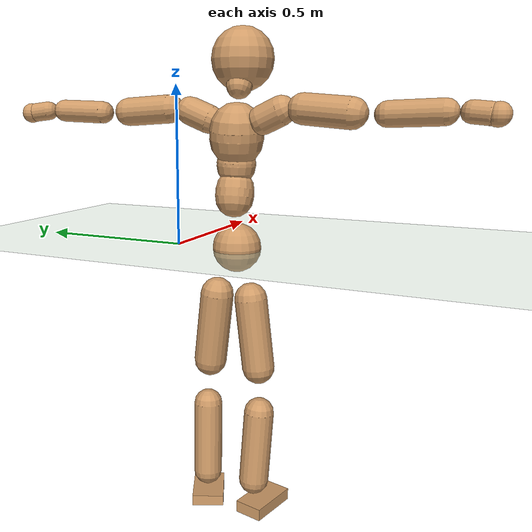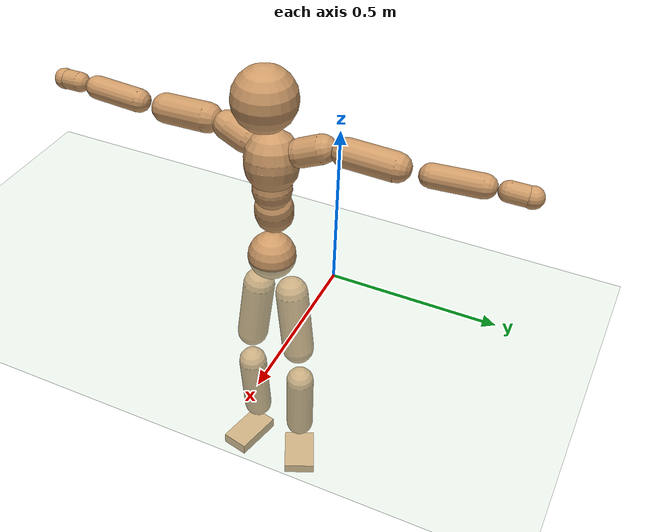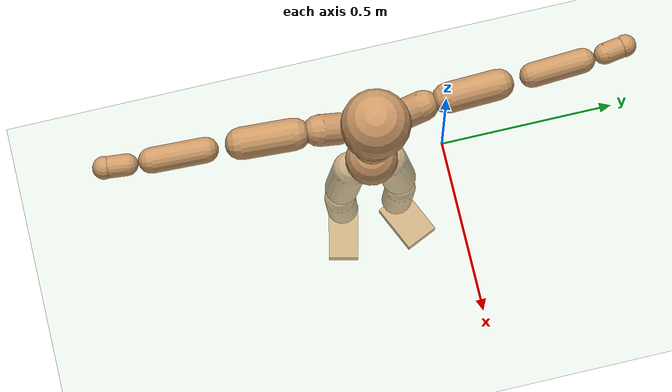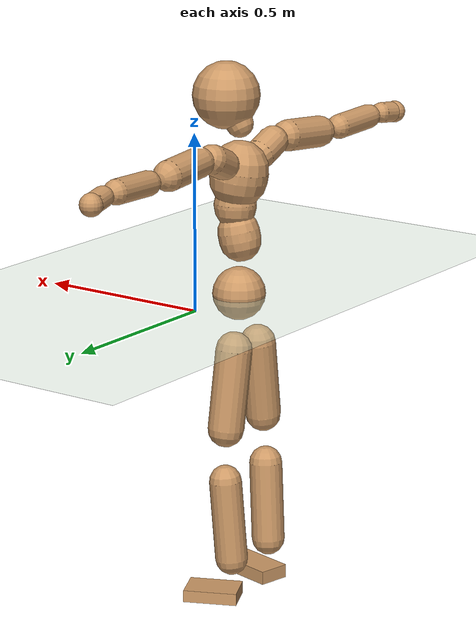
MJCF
<mujoco model="humanoid">
  <compiler coordinate="local" angle="radian"/>
  <default>
    <joint damping="0.0" armature="0.01" stiffness="0.0" limited="true"/>
    <geom conaffinity="1" condim="3" contype="7" margin="0.001" rgba="0.8 0.6 .4 1"/>
  </default>
  <asset>
    <texture type="skybox" builtin="gradient" rgb1=".4 .5 .6" rgb2="0 0 0" width="100" height="100"/>
    <texture builtin="flat" height="1278" mark="cross" markrgb="1 1 1" name="texgeom" random="0.01" rgb1="0.8 0.6 0.4" rgb2="0.8 0.6 0.4" type="cube" width="127"/>
    <texture builtin="checker" height="100" name="texplane" rgb1="0 0 0" rgb2="0.8 0.8 0.8" type="2d" width="100"/>
    <material name="MatPlane" reflectance="0.5" shininess="1" specular="1" texrepeat="60 60" texture="texplane"/>
    <material name="geom" texture="texgeom" texuniform="true"/>
  </asset>
  <worldbody>
    <light cutoff="100" diffuse="1 1 1" dir="-0 0 -1.3" directional="true" exponent="1" pos="0 0 1.3" specular=".1 .1 .1"/>
    <geom conaffinity="1" condim="3" name="floor" pos="0 0 0" rgba="0.8 0.9 0.8 1" size="100 100 .2" type="plane" material="MatPlane"/>
    <body name="Pelvis" pos="-0.001 -0.2077 0.0058">
      <freejoint name="Pelvis"/>
      <geom type="sphere" contype="1" conaffinity="1" density="500" size="0.0759" pos="0.0000 0.0000 0.0000" name="Pelvis"/>
      <body name="L_Hip" pos="-0.0258 0.048 -0.0732">
        <joint name="L_Hip_x" type="hinge" pos="0 0 0" axis="1 0 0" stiffness="800" damping="80" armature="0.02" range="-180.0000 180.0000"/>
        <joint name="L_Hip_y" type="hinge" pos="0 0 0" axis="0 1 0" stiffness="800" damping="80" armature="0.02" range="-180.0000 180.0000"/>
        <joint name="L_Hip_z" type="hinge" pos="0 0 0" axis="0 0 1" stiffness="800" damping="80" armature="0.02" range="-180.0000 180.0000"/>
        <geom type="capsule" contype="1" conaffinity="1" density="500" fromto="0.0022 0.0096 -0.0761 0.0089 0.0385 -0.3045" size="0.0522" name="L_Hip"/>
        <body name="L_Knee" pos="0.0111 0.0481 -0.3806">
          <joint name="L_Knee_x" type="hinge" pos="0 0 0" axis="1 0 0" stiffness="800" damping="80" armature="0.02" range="-180.0000 180.0000"/>
          <joint name="L_Knee_y" type="hinge" pos="0 0 0" axis="0 1 0" stiffness="800" damping="80" armature="0.02" range="-180.0000 180.0000"/>
          <joint name="L_Knee_z" type="hinge" pos="0 0 0" axis="0 0 1" stiffness="800" damping="80" armature="0.02" range="-180.0000 180.0000"/>
          <geom type="capsule" contype="1" conaffinity="1" density="500" fromto="-0.0058 -0.0020 -0.0780 -0.0234 -0.0079 -0.3121" size="0.0466" name="L_Knee"/>
          <body name="L_Ankle" pos="-0.0292 -0.0099 -0.3902">
            <joint name="L_Ankle_x" type="hinge" pos="0 0 0" axis="1 0 0" stiffness="800" damping="80" armature="0.02" range="-180.0000 180.0000"/>
            <joint name="L_Ankle_y" type="hinge" pos="0 0 0" axis="0 1 0" stiffness="800" damping="80" armature="0.02" range="-180.0000 180.0000"/>
            <joint name="L_Ankle_z" type="hinge" pos="0 0 0" axis="0 0 1" stiffness="800" damping="80" armature="0.02" range="-180.0000 180.0000"/>
            <geom type="box" contype="1" conaffinity="1" density="500" pos="0.0547 0.0250 -0.0283" size="0.0771 0.0521 0.0175" quat="0.9771 0.0000 0.0000 0.2127" name="L_Ankle"/>
            <body name="L_Toe" pos="0.1095 0.05 -0.0566">
              <joint name="L_Toe_x" type="hinge" pos="0 0 0" axis="1 0 0" stiffness="500" damping="50" armature="0.02" range="-180.0000 180.0000"/>
              <joint name="L_Toe_y" type="hinge" pos="0 0 0" axis="0 1 0" stiffness="500" damping="50" armature="0.02" range="-180.0000 180.0000"/>
              <joint name="L_Toe_z" type="hinge" pos="0 0 0" axis="0 0 1" stiffness="500" damping="50" armature="0.02" range="-180.0000 180.0000"/>
              <geom type="box" contype="1" conaffinity="1" density="500" pos="0.0000 0.0000 0.0307" size="0.001 0.0025 0.001" quat="0.9763 0.0000 0.0000 0.2166" name="L_Toe"/>
            </body>
          </body>
        </body>
      </body>
      <body name="R_Hip" pos="-0.0239 -0.0496 -0.0803">
        <joint name="R_Hip_x" type="hinge" pos="0 0 0" axis="1 0 0" stiffness="800" damping="80" armature="0.02" range="-180.0000 180.0000"/>
        <joint name="R_Hip_y" type="hinge" pos="0 0 0" axis="0 1 0" stiffness="800" damping="80" armature="0.02" range="-180.0000 180.0000"/>
        <joint name="R_Hip_z" type="hinge" pos="0 0 0" axis="0 0 1" stiffness="800" damping="80" armature="0.02" range="-180.0000 180.0000"/>
        <geom type="capsule" contype="1" conaffinity="1" density="500" fromto="-0.0002 -0.0093 -0.0738 -0.0007 -0.0370 -0.2953" size="0.0513" name="R_Hip"/>
        <body name="R_Knee" pos="-0.0009 -0.0463 -0.3691">
          <joint name="R_Knee_x" type="hinge" pos="0 0 0" axis="1 0 0" stiffness="800" damping="80" armature="0.02" range="-180.0000 180.0000"/>
          <joint name="R_Knee_y" type="hinge" pos="0 0 0" axis="0 1 0" stiffness="800" damping="80" armature="0.02" range="-180.0000 180.0000"/>
          <joint name="R_Knee_z" type="hinge" pos="0 0 0" axis="0 0 1" stiffness="800" damping="80" armature="0.02" range="-180.0000 180.0000"/>
          <geom type="capsule" contype="1" conaffinity="1" density="500" fromto="-0.0055 0.0031 -0.0764 -0.0220 0.0122 -0.3055" size="0.0478" name="R_Knee"/>
          <body name="R_Ankle" pos="-0.0274 0.0153 -0.3819">
            <joint name="R_Ankle_x" type="hinge" pos="0 0 0" axis="1 0 0" stiffness="800" damping="80" armature="0.02" range="-180.0000 180.0000"/>
            <joint name="R_Ankle_y" type="hinge" pos="0 0 0" axis="0 1 0" stiffness="800" damping="80" armature="0.02" range="-180.0000 180.0000"/>
            <joint name="R_Ankle_z" type="hinge" pos="0 0 0" axis="0 0 1" stiffness="800" damping="80" armature="0.02" range="-180.0000 180.0000"/>
            <geom type="box" contype="1" conaffinity="1" density="500" pos="0.0594 -0.0135 -0.0295" size="0.0841 0.0461 0.0195" quat="0.9938 0.0000 0.0000 -0.1115" name="R_Ankle"/>
            <body name="R_Toe" pos="0.1187 -0.027 -0.0591">
              <joint name="R_Toe_x" type="hinge" pos="0 0 0" axis="1 0 0" stiffness="500" damping="50" armature="0.02" range="-180.0000 180.0000"/>
              <joint name="R_Toe_y" type="hinge" pos="0 0 0" axis="0 1 0" stiffness="500" damping="50" armature="0.02" range="-180.0000 180.0000"/>
              <joint name="R_Toe_z" type="hinge" pos="0 0 0" axis="0 0 1" stiffness="500" damping="50" armature="0.02" range="-180.0000 180.0000"/>
              <geom type="box" contype="1" conaffinity="1" density="500" pos="0.0000 0.0000 0.0318" size="0.0009 0.0022 0.0011" quat="0.9948 0.0000 0.0000 -0.1019" name="R_Toe"/>
            </body>
          </body>
        </body>
      </body>
      <body name="Torso" pos="-0.0194 0.0038 0.105">
        <joint name="Torso_x" type="hinge" pos="0 0 0" axis="1 0 0" stiffness="1000" damping="100" armature="0.02" range="-180.0000 180.0000"/>
        <joint name="Torso_y" type="hinge" pos="0 0 0" axis="0 1 0" stiffness="1000" damping="100" armature="0.02" range="-180.0000 180.0000"/>
        <joint name="Torso_z" type="hinge" pos="0 0 0" axis="0 0 1" stiffness="1000" damping="100" armature="0.02" range="-180.0000 180.0000"/>
        <geom type="capsule" contype="1" conaffinity="1" density="500" fromto="0.0172 0.0022 0.0753 0.0115 0.0014 0.0502" size="0.0596" name="Torso"/>
        <body name="Spine" pos="0.0287 0.0036 0.1255">
          <joint name="Spine_x" type="hinge" pos="0 0 0" axis="1 0 0" stiffness="1000" damping="100" armature="0.02" range="-180.0000 180.0000"/>
          <joint name="Spine_y" type="hinge" pos="0 0 0" axis="0 1 0" stiffness="1000" damping="100" armature="0.02" range="-180.0000 180.0000"/>
          <joint name="Spine_z" type="hinge" pos="0 0 0" axis="0 0 1" stiffness="1000" damping="100" armature="0.02" range="-180.0000 180.0000"/>
          <geom type="capsule" contype="1" conaffinity="1" density="500" fromto="-0.0004 -0.0009 0.0302 -0.0003 -0.0006 0.0201" size="0.0602" name="Spine"/>
          <body name="Chest" pos="-0.0007 -0.0015 0.0503">
            <joint name="Chest_x" type="hinge" pos="0 0 0" axis="1 0 0" stiffness="1000" damping="100" armature="0.02" range="-180.0000 180.0000"/>
            <joint name="Chest_y" type="hinge" pos="0 0 0" axis="0 1 0" stiffness="1000" damping="100" armature="0.02" range="-180.0000 180.0000"/>
            <joint name="Chest_z" type="hinge" pos="0 0 0" axis="0 0 1" stiffness="1000" damping="100" armature="0.02" range="-180.0000 180.0000"/>
            <geom type="capsule" contype="1" conaffinity="1" density="500" fromto="-0.0103 -0.0052 0.0764 -0.0068 -0.0035 0.0509" size="0.0827" name="Chest"/>
            <body name="Neck" pos="-0.0159 -0.0129 0.1858">
              <joint name="Neck_x" type="hinge" pos="0 0 0" axis="1 0 0" stiffness="500" damping="50" armature="0.02" range="-180.0000 180.0000"/>
              <joint name="Neck_y" type="hinge" pos="0 0 0" axis="0 1 0" stiffness="500" damping="50" armature="0.02" range="-180.0000 180.0000"/>
              <joint name="Neck_z" type="hinge" pos="0 0 0" axis="0 0 1" stiffness="500" damping="50" armature="0.02" range="-180.0000 180.0000"/>
              <geom type="capsule" contype="1" conaffinity="1" density="500" fromto="0.0101 0.0019 0.0193 0.0403 0.0075 0.0773" size="0.0394" name="Neck"/>
              <body name="Head" pos="0.0504 0.0094 0.0966">
                <joint name="Head_x" type="hinge" pos="0 0 0" axis="1 0 0" stiffness="500" damping="50" armature="0.02" range="-180.0000 180.0000"/>
                <joint name="Head_y" type="hinge" pos="0 0 0" axis="0 1 0" stiffness="500" damping="50" armature="0.02" range="-180.0000 180.0000"/>
                <joint name="Head_z" type="hinge" pos="0 0 0" axis="0 0 1" stiffness="500" damping="50" armature="0.02" range="-180.0000 180.0000"/>
                <geom type="sphere" contype="1" conaffinity="1" density="500" size="0.0954" pos="0.0000 0.0000 0.0000" name="Head"/>
              </body>
            </body>
            <body name="L_Thorax" pos="-0.0161 0.0595 0.098">
              <joint name="L_Thorax_x" type="hinge" pos="0 0 0" axis="1 0 0" stiffness="500" damping="50" armature="0.02" range="-180.0000 180.0000"/>
              <joint name="L_Thorax_y" type="hinge" pos="0 0 0" axis="0 1 0" stiffness="500" damping="50" armature="0.02" range="-180.0000 180.0000"/>
              <joint name="L_Thorax_z" type="hinge" pos="0 0 0" axis="0 0 1" stiffness="500" damping="50" armature="0.02" range="-180.0000 180.0000"/>
              <geom type="capsule" contype="1" conaffinity="1" density="500" fromto="-0.0020 0.0209 0.0086 -0.0082 0.0836 0.0346" size="0.0429" name="L_Thorax"/>
              <body name="L_Shoulder" pos="-0.0102 0.1045 0.0432">
                <joint name="L_Shoulder_x" type="hinge" pos="0 0 0" axis="1 0 0" stiffness="500" damping="50" armature="0.02" range="-720.0000 720.0000"/>
                <joint name="L_Shoulder_y" type="hinge" pos="0 0 0" axis="0 1 0" stiffness="500" damping="50" armature="0.02" range="-720.0000 720.0000"/>
                <joint name="L_Shoulder_z" type="hinge" pos="0 0 0" axis="0 0 1" stiffness="500" damping="50" armature="0.02" range="-720.0000 720.0000"/>
                <geom type="capsule" contype="1" conaffinity="1" density="500" fromto="-0.0024 0.0483 -0.0031 -0.0097 0.1931 -0.0124" size="0.0432" name="L_Shoulder"/>
                <body name="L_Elbow" pos="-0.0122 0.2413 -0.0155">
                  <joint name="L_Elbow_x" type="hinge" pos="0 0 0" axis="1 0 0" stiffness="500" damping="50" armature="0.02" range="-720.0000 720.0000"/>
                  <joint name="L_Elbow_y" type="hinge" pos="0 0 0" axis="0 1 0" stiffness="500" damping="50" armature="0.02" range="-720.0000 720.0000"/>
                  <joint name="L_Elbow_z" type="hinge" pos="0 0 0" axis="0 0 1" stiffness="500" damping="50" armature="0.02" range="-720.0000 720.0000"/>
                  <geom type="capsule" contype="1" conaffinity="1" density="500" fromto="-0.0023 0.0480 0.0016 -0.0093 0.1919 0.0066" size="0.0347" name="L_Elbow"/>
                  <body name="L_Wrist" pos="-0.0116 0.2399 0.0082">
                    <joint name="L_Wrist_x" type="hinge" pos="0 0 0" axis="1 0 0" stiffness="300" damping="30" armature="0.02" range="-180.0000 180.0000"/>
                    <joint name="L_Wrist_y" type="hinge" pos="0 0 0" axis="0 1 0" stiffness="300" damping="30" armature="0.02" range="-180.0000 180.0000"/>
                    <joint name="L_Wrist_z" type="hinge" pos="0 0 0" axis="0 0 1" stiffness="300" damping="30" armature="0.02" range="-180.0000 180.0000"/>
                    <geom type="capsule" contype="1" conaffinity="1" density="500" fromto="-0.0028 0.0154 -0.0019 -0.0112 0.0615 -0.0075" size="0.0297" name="L_Wrist"/>
                    <body name="L_Hand" pos="-0.014 0.0768 -0.0094">
                      <joint name="L_Hand_x" type="hinge" pos="0 0 0" axis="1 0 0" stiffness="300" damping="30" armature="0.02" range="-180.0000 180.0000"/>
                      <joint name="L_Hand_y" type="hinge" pos="0 0 0" axis="0 1 0" stiffness="300" damping="30" armature="0.02" range="-180.0000 180.0000"/>
                      <joint name="L_Hand_z" type="hinge" pos="0 0 0" axis="0 0 1" stiffness="300" damping="30" armature="0.02" range="-180.0000 180.0000"/>
                      <geom type="sphere" contype="1" conaffinity="1" density="500" size="0.0314" pos="0.0000 0.0000 0.0000" name="L_Hand"/>
                    </body>
                  </body>
                </body>
              </body>
            </body>
            <body name="R_Thorax" pos="-0.0193 -0.0725 0.0981">
              <joint name="R_Thorax_x" type="hinge" pos="0 0 0" axis="1 0 0" stiffness="500" damping="50" armature="0.02" range="-180.0000 180.0000"/>
              <joint name="R_Thorax_y" type="hinge" pos="0 0 0" axis="0 1 0" stiffness="500" damping="50" armature="0.02" range="-180.0000 180.0000"/>
              <joint name="R_Thorax_z" type="hinge" pos="0 0 0" axis="0 0 1" stiffness="500" damping="50" armature="0.02" range="-180.0000 180.0000"/>
              <geom type="capsule" contype="1" conaffinity="1" density="500" fromto="-0.0004 -0.0195 0.0088 -0.0017 -0.0780 0.0354" size="0.0441" name="R_Thorax"/>
              <body name="R_Shoulder" pos="-0.0022 -0.0975 0.0442">
                <joint name="R_Shoulder_x" type="hinge" pos="0 0 0" axis="1 0 0" stiffness="500" damping="50" armature="0.02" range="-720.0000 720.0000"/>
                <joint name="R_Shoulder_y" type="hinge" pos="0 0 0" axis="0 1 0" stiffness="500" damping="50" armature="0.02" range="-720.0000 720.0000"/>
                <joint name="R_Shoulder_z" type="hinge" pos="0 0 0" axis="0 0 1" stiffness="500" damping="50" armature="0.02" range="-720.0000 720.0000"/>
                <geom type="capsule" contype="1" conaffinity="1" density="500" fromto="-0.0036 -0.0483 -0.0038 -0.0144 -0.1934 -0.0153" size="0.0453" name="R_Shoulder"/>
                <body name="R_Elbow" pos="-0.0179 -0.2417 -0.0191">
                  <joint name="R_Elbow_x" type="hinge" pos="0 0 0" axis="1 0 0" stiffness="500" damping="50" armature="0.02" range="-720.0000 720.0000"/>
                  <joint name="R_Elbow_y" type="hinge" pos="0 0 0" axis="0 1 0" stiffness="500" damping="50" armature="0.02" range="-720.0000 720.0000"/>
                  <joint name="R_Elbow_z" type="hinge" pos="0 0 0" axis="0 0 1" stiffness="500" damping="50" armature="0.02" range="-720.0000 720.0000"/>
                  <geom type="capsule" contype="1" conaffinity="1" density="500" fromto="-0.0013 -0.0501 0.0020 -0.0053 -0.2002 0.0078" size="0.0359" name="R_Elbow"/>
                  <body name="R_Wrist" pos="-0.0066 -0.2503 0.0098">
                    <joint name="R_Wrist_x" type="hinge" pos="0 0 0" axis="1 0 0" stiffness="300" damping="30" armature="0.02" range="-180.0000 180.0000"/>
                    <joint name="R_Wrist_y" type="hinge" pos="0 0 0" axis="0 1 0" stiffness="300" damping="30" armature="0.02" range="-180.0000 180.0000"/>
                    <joint name="R_Wrist_z" type="hinge" pos="0 0 0" axis="0 0 1" stiffness="300" damping="30" armature="0.02" range="-180.0000 180.0000"/>
                    <geom type="capsule" contype="1" conaffinity="1" density="500" fromto="-0.0019 -0.0159 -0.0015 -0.0075 -0.0634 -0.0059" size="0.0306" name="R_Wrist"/>
                    <body name="R_Hand" pos="-0.0094 -0.0793 -0.0074">
                      <joint name="R_Hand_x" type="hinge" pos="0 0 0" axis="1 0 0" stiffness="300" damping="30" armature="0.02" range="-180.0000 180.0000"/>
                      <joint name="R_Hand_y" type="hinge" pos="0 0 0" axis="0 1 0" stiffness="300" damping="30" armature="0.02" range="-180.0000 180.0000"/>
                      <joint name="R_Hand_z" type="hinge" pos="0 0 0" axis="0 0 1" stiffness="300" damping="30" armature="0.02" range="-180.0000 180.0000"/>
                      <geom type="sphere" contype="1" conaffinity="1" density="500" size="0.0322" pos="0.0000 0.0000 0.0000" name="R_Hand"/>
                    </body>
                  </body>
                </body>
              </body>
            </body>
          </body>
        </body>
      </body>
    </body>
  </worldbody>
  <actuator>
    <motor name="L_Hip_x" joint="L_Hip_x" gear="500"/>
    <motor name="L_Hip_y" joint="L_Hip_y" gear="500"/>
    <motor name="L_Hip_z" joint="L_Hip_z" gear="500"/>
    <motor name="L_Knee_x" joint="L_Knee_x" gear="500"/>
    <motor name="L_Knee_y" joint="L_Knee_y" gear="500"/>
    <motor name="L_Knee_z" joint="L_Knee_z" gear="500"/>
    <motor name="L_Ankle_x" joint="L_Ankle_x" gear="500"/>
    <motor name="L_Ankle_y" joint="L_Ankle_y" gear="500"/>
    <motor name="L_Ankle_z" joint="L_Ankle_z" gear="500"/>
    <motor name="L_Toe_x" joint="L_Toe_x" gear="500"/>
    <motor name="L_Toe_y" joint="L_Toe_y" gear="500"/>
    <motor name="L_Toe_z" joint="L_Toe_z" gear="500"/>
    <motor name="R_Hip_x" joint="R_Hip_x" gear="500"/>
    <motor name="R_Hip_y" joint="R_Hip_y" gear="500"/>
    <motor name="R_Hip_z" joint="R_Hip_z" gear="500"/>
    <motor name="R_Knee_x" joint="R_Knee_x" gear="500"/>
    <motor name="R_Knee_y" joint="R_Knee_y" gear="500"/>
    <motor name="R_Knee_z" joint="R_Knee_z" gear="500"/>
    <motor name="R_Ankle_x" joint="R_Ankle_x" gear="500"/>
    <motor name="R_Ankle_y" joint="R_Ankle_y" gear="500"/>
    <motor name="R_Ankle_z" joint="R_Ankle_z" gear="500"/>
    <motor name="R_Toe_x" joint="R_Toe_x" gear="500"/>
    <motor name="R_Toe_y" joint="R_Toe_y" gear="500"/>
    <motor name="R_Toe_z" joint="R_Toe_z" gear="500"/>
    <motor name="Torso_x" joint="Torso_x" gear="500"/>
    <motor name="Torso_y" joint="Torso_y" gear="500"/>
    <motor name="Torso_z" joint="Torso_z" gear="500"/>
    <motor name="Spine_x" joint="Spine_x" gear="500"/>
    <motor name="Spine_y" joint="Spine_y" gear="500"/>
    <motor name="Spine_z" joint="Spine_z" gear="500"/>
    <motor name="Chest_x" joint="Chest_x" gear="500"/>
    <motor name="Chest_y" joint="Chest_y" gear="500"/>
    <motor name="Chest_z" joint="Chest_z" gear="500"/>
    <motor name="Neck_x" joint="Neck_x" gear="500"/>
    <motor name="Neck_y" joint="Neck_y" gear="500"/>
    <motor name="Neck_z" joint="Neck_z" gear="500"/>
    <motor name="Head_x" joint="Head_x" gear="500"/>
    <motor name="Head_y" joint="Head_y" gear="500"/>
    <motor name="Head_z" joint="Head_z" gear="500"/>
    <motor name="L_Thorax_x" joint="L_Thorax_x" gear="500"/>
    <motor name="L_Thorax_y" joint="L_Thorax_y" gear="500"/>
    <motor name="L_Thorax_z" joint="L_Thorax_z" gear="500"/>
    <motor name="L_Shoulder_x" joint="L_Shoulder_x" gear="500"/>
    <motor name="L_Shoulder_y" joint="L_Shoulder_y" gear="500"/>
    <motor name="L_Shoulder_z" joint="L_Shoulder_z" gear="500"/>
    <motor name="L_Elbow_x" joint="L_Elbow_x" gear="500"/>
    <motor name="L_Elbow_y" joint="L_Elbow_y" gear="500"/>
    <motor name="L_Elbow_z" joint="L_Elbow_z" gear="500"/>
    <motor name="L_Wrist_x" joint="L_Wrist_x" gear="500"/>
    <motor name="L_Wrist_y" joint="L_Wrist_y" gear="500"/>
    <motor name="L_Wrist_z" joint="L_Wrist_z" gear="500"/>
    <motor name="L_Hand_x" joint="L_Hand_x" gear="500"/>
    <motor name="L_Hand_y" joint="L_Hand_y" gear="500"/>
    <motor name="L_Hand_z" joint="L_Hand_z" gear="500"/>
    <motor name="R_Thorax_x" joint="R_Thorax_x" gear="500"/>
    <motor name="R_Thorax_y" joint="R_Thorax_y" gear="500"/>
    <motor name="R_Thorax_z" joint="R_Thorax_z" gear="500"/>
    <motor name="R_Shoulder_x" joint="R_Shoulder_x" gear="500"/>
    <motor name="R_Shoulder_y" joint="R_Shoulder_y" gear="500"/>
    <motor name="R_Shoulder_z" joint="R_Shoulder_z" gear="500"/>
    <motor name="R_Elbow_x" joint="R_Elbow_x" gear="500"/>
    <motor name="R_Elbow_y" joint="R_Elbow_y" gear="500"/>
    <motor name="R_Elbow_z" joint="R_Elbow_z" gear="500"/>
    <motor name="R_Wrist_x" joint="R_Wrist_x" gear="500"/>
    <motor name="R_Wrist_y" joint="R_Wrist_y" gear="500"/>
    <motor name="R_Wrist_z" joint="R_Wrist_z" gear="500"/>
    <motor name="R_Hand_x" joint="R_Hand_x" gear="500"/>
    <motor name="R_Hand_y" joint="R_Hand_y" gear="500"/>
    <motor name="R_Hand_z" joint="R_Hand_z" gear="500"/>
  </actuator>
  <contact>
    <exclude body1="Torso" body2="Chest"/>
    <exclude body1="Head" body2="Chest"/>
    <exclude body1="R_Knee" body2="R_Toe"/>
    <exclude body1="R_Knee" body2="L_Ankle"/>
    <exclude body1="R_Knee" body2="L_Toe"/>
    <exclude body1="L_Knee" body2="L_Toe"/>
    <exclude body1="L_Knee" body2="R_Ankle"/>
    <exclude body1="L_Knee" body2="R_Toe"/>
    <exclude body1="L_Shoulder" body2="Chest"/>
    <exclude body1="R_Shoulder" body2="Chest"/>
  </contact>
  <sensor/>
  <size njmax="700" nconmax="700"/>
</mujoco>
